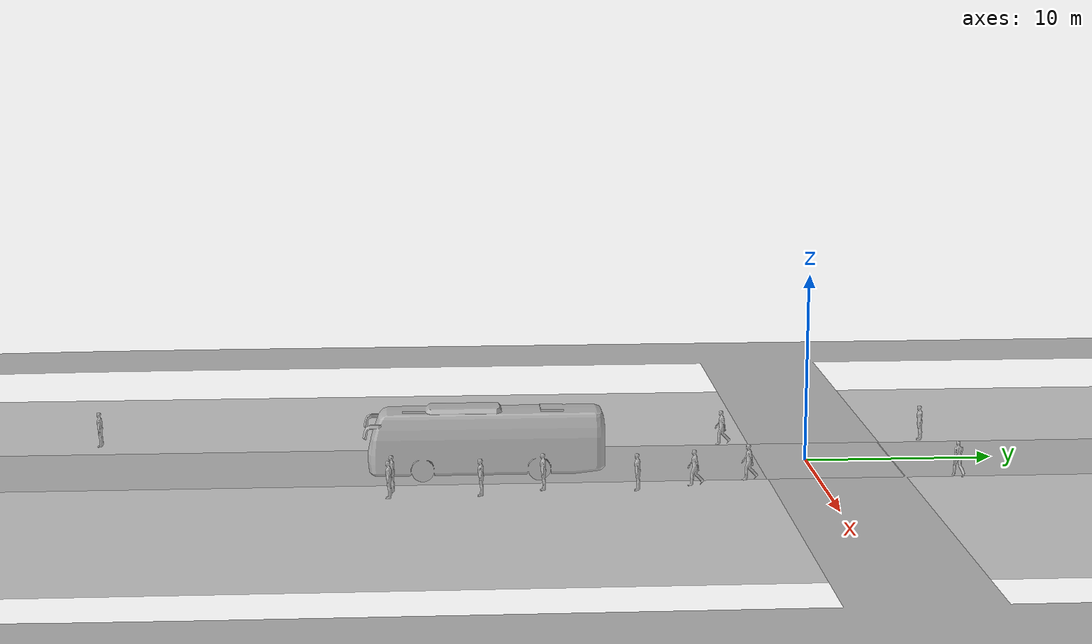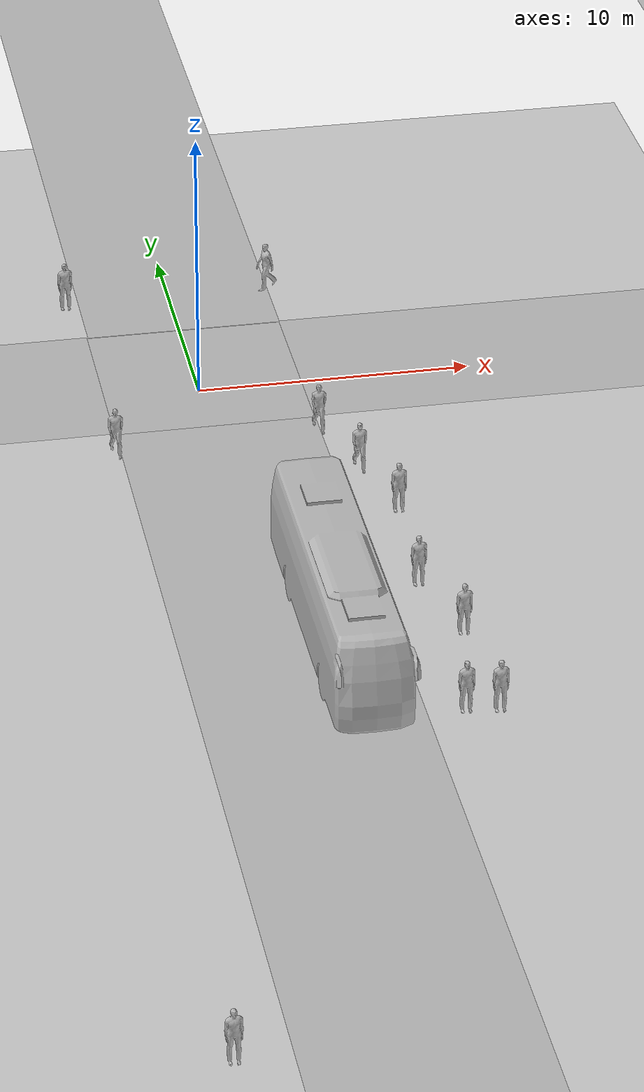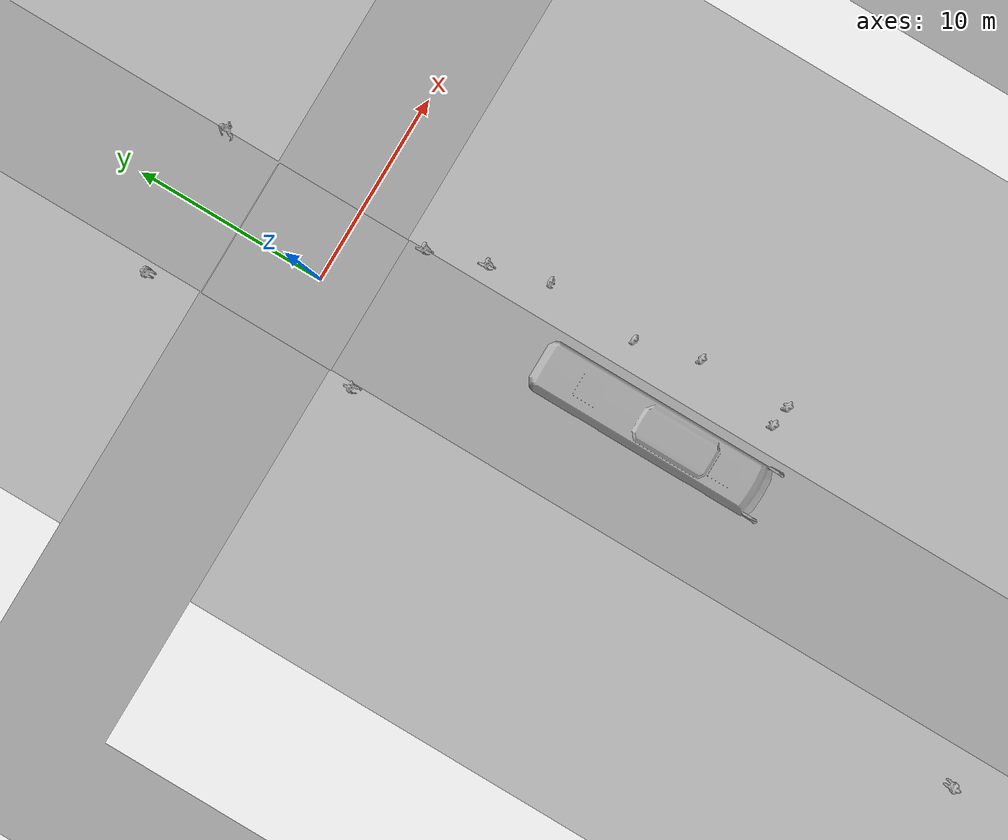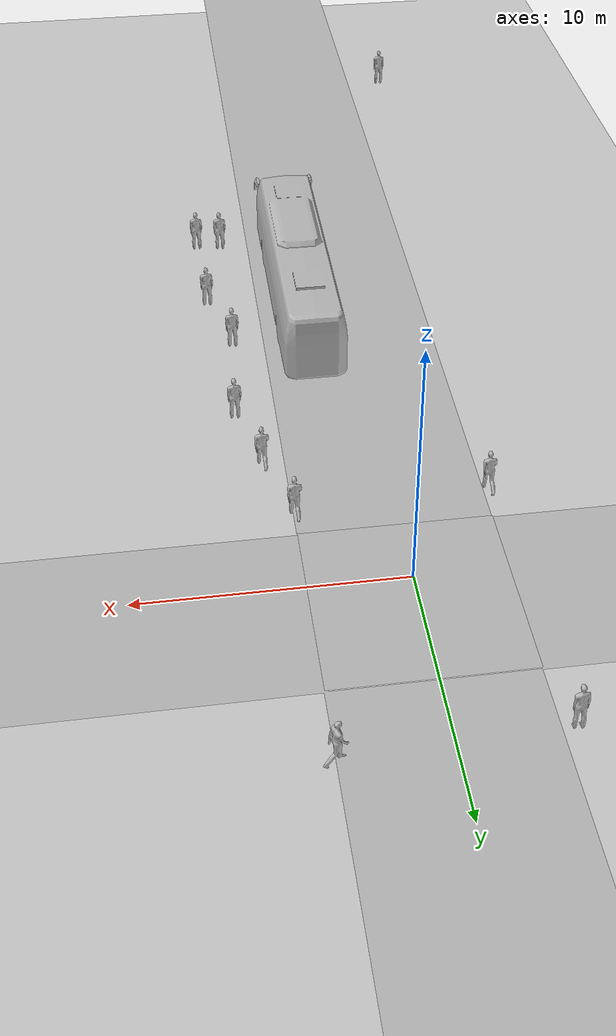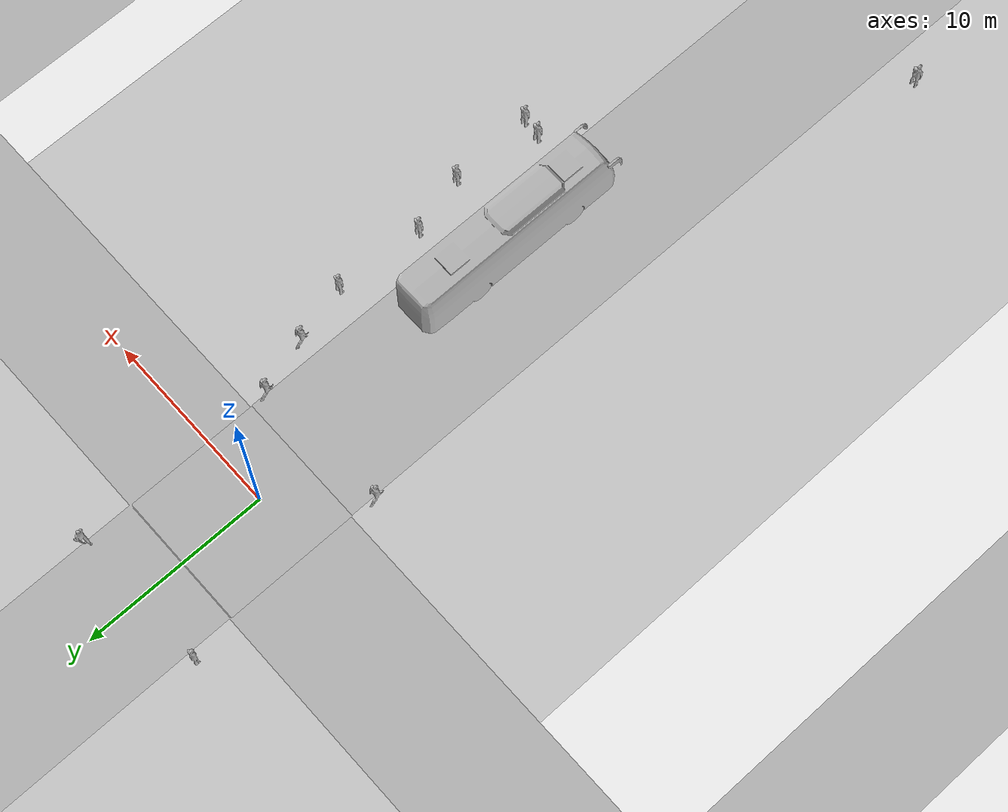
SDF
<sdf version="1.7">
 <world name="default">
  <light name="sun" type="directional">
   <pose>0 0 10 0 -0 0</pose>
   <diffuse>0.8 0.8 0.8 1</diffuse>
   <specular>0.2 0.2 0.2 1</specular>
   <attenuation>
    <range>1000</range>
    <constant>0.9</constant>
    <linear>0.01</linear>
    <quadratic>0.001</quadratic>
   </attenuation>
   <direction>-0.5 0.1 -0.9</direction>
   <spot><inner_angle>0</inner_angle><outer_angle>0</outer_angle><falloff>0</falloff></spot>
  </light>
  <model name="ground_plane">
   <static>1</static>
   <link name="link">
    <collision name="collision">
     <geometry><plane><normal>0 0 1</normal><size>100 100</size></plane></geometry>
     <surface>
      <contact><collide_bitmask>65535</collide_bitmask></contact>
      <friction><ode><mu>100</mu><mu2>50</mu2></ode></friction>
     </surface>
    </collision>
    <visual name="visual">
     <cast_shadows>0</cast_shadows>
     <geometry><plane><normal>0 0 1</normal><size>100 100</size></plane></geometry>
     <material>
      <script><uri>file://media/materials/scripts/gazebo.material</uri><name>Gazebo/Grey</name></script>
     </material>
    </visual>
   </link>
  </model>
  <gravity>0 0 -9.8</gravity>
  <magnetic_field>6e-06 2.3e-05 -4.2e-05</magnetic_field>
  <atmosphere type="adiabatic"/>
  <physics type="ode">
   <max_step_size>0.001</max_step_size>
   <real_time_factor>1</real_time_factor>
   <real_time_update_rate>1000</real_time_update_rate>
  </physics>
  <scene><ambient>0.4 0.4 0.4 1</ambient><background>0.7 0.7 0.7 1</background><shadows>1</shadows></scene>
  <spherical_coordinates>
   <surface_model>EARTH_WGS84</surface_model>
   <latitude_deg>0</latitude_deg>
   <longitude_deg>0</longitude_deg>
   <elevation>0</elevation>
   <heading_deg>0</heading_deg>
  </spherical_coordinates>
  <model name="self_driving_track">
   <link name="link_0">
    <pose>-0.03442 0.020057 0 0 -0 0</pose>
    <visual name="visual">
     <geometry><mesh><uri>model://track/meshes/complete_circuit.dae</uri><scale>1 1 1</scale></mesh></geometry>
     <material>
      <script>
       <uri>model://track/materials/script_road/</uri>
       <uri>model://track/materials/textures</uri>
       <name>road/Diffuse</name>
      </script>
     </material>
    </visual>
    <collision name="collision">
     <geometry><mesh><uri>model://track/meshes/complete_circuit.dae</uri><scale>1 1 1</scale></mesh></geometry>
     <surface>
      <friction>
       <ode><mu>1</mu><mu2>1</mu2><fdir1>0 0 0</fdir1><slip1>0</slip1><slip2>0</slip2></ode>
       <torsional>
        <coefficient>1</coefficient>
        <patch_radius>0</patch_radius>
        <surface_radius>0</surface_radius>
        <use_patch_radius>1</use_patch_radius>
        <ode><slip>0</slip></ode>
       </torsional>
      </friction>
      <bounce><restitution_coefficient>0</restitution_coefficient><threshold>1e+06</threshold></bounce>
      <contact>
       <collide_without_contact>0</collide_without_contact>
       <collide_without_contact_bitmask>1</collide_without_contact_bitmask>
       <collide_bitmask>1</collide_bitmask>
       <ode>
        <soft_cfm>0</soft_cfm>
        <soft_erp>0.2</soft_erp>
        <kp>1e+13</kp>
        <kd>1</kd>
        <max_vel>0.01</max_vel>
        <min_depth>0</min_depth>
       </ode>
       <bullet>
        <split_impulse>1</split_impulse>
        <split_impulse_penetration_threshold>-0.01</split_impulse_penetration_threshold>
        <soft_cfm>0</soft_cfm>
        <soft_erp>0.2</soft_erp>
        <kp>1e+13</kp>
        <kd>1</kd>
       </bullet>
      </contact>
     </surface>
    </collision>
   </link>
   <link name="link_1">
    <pose>0.034415 -0.020057 0 0 -0 0</pose>
    <visual name="visual">
     <geometry><mesh><uri>model://track/meshes/chowk.dae</uri><scale>1 1 1</scale></mesh></geometry>
     <material>
      <script>
       <uri>model://track/materials/script_chowk</uri>
       <uri>model://track/materials/textures</uri>
       <name>chowk/Diffuse</name>
      </script>
     </material>
    </visual>
    <collision name="collision">
     <geometry><mesh><uri>model://track/meshes/chowk.dae</uri><scale>1 1 1</scale></mesh></geometry>
     <surface>
      <friction>
       <ode><mu>1</mu><mu2>1</mu2><fdir1>0 0 0</fdir1><slip1>0</slip1><slip2>0</slip2></ode>
       <torsional>
        <coefficient>1</coefficient>
        <patch_radius>0</patch_radius>
        <surface_radius>0</surface_radius>
        <use_patch_radius>1</use_patch_radius>
        <ode><slip>0</slip></ode>
       </torsional>
      </friction>
      <bounce><restitution_coefficient>0</restitution_coefficient><threshold>1e+06</threshold></bounce>
      <contact>
       <collide_without_contact>0</collide_without_contact>
       <collide_without_contact_bitmask>1</collide_without_contact_bitmask>
       <collide_bitmask>1</collide_bitmask>
       <ode>
        <soft_cfm>0</soft_cfm>
        <soft_erp>0.2</soft_erp>
        <kp>1e+13</kp>
        <kd>1</kd>
        <max_vel>0.01</max_vel>
        <min_depth>0</min_depth>
       </ode>
       <bullet>
        <split_impulse>1</split_impulse>
        <split_impulse_penetration_threshold>-0.01</split_impulse_penetration_threshold>
        <soft_cfm>0</soft_cfm>
        <soft_erp>0.2</soft_erp>
        <kp>1e+13</kp>
        <kd>1</kd>
       </bullet>
      </contact>
     </surface>
    </collision>
   </link>
   <static>1</static>
   <pose>-6 0 0.0025 0 -0 0</pose>
  </model>
  <model name="person_walking">
   <link name="link">
    <inertial>
     <pose>0 0 0.95 0 -0 0</pose>
     <mass>80</mass>
     <inertia><ixx>27.82</ixx><ixy>0</ixy><ixz>0</ixz><iyy>24.88</iyy><iyz>0</iyz><izz>4.57</izz></inertia>
    </inertial>
    <collision name="bottom">
     <pose>0 0 0.01 0 -0 0</pose>
     <geometry><box><size>0.35 0.75 0.02</size></box></geometry>
    </collision>
    <collision name="person">
     <pose>0 0 -0.02 0 -0 0</pose>
     <geometry><mesh><uri>model://person_walking/meshes/walking.dae</uri></mesh></geometry>
    </collision>
    <visual name="visual">
     <pose>0 0 -0.02 0 -0 0</pose>
     <geometry><mesh><uri>model://person_walking/meshes/walking.dae</uri></mesh></geometry>
    </visual>
   </link>
   <pose>3.81742 7.33091 0 1e-06 0 -1.25732</pose>
  </model>
  <model name="person_standing">
   <link name="link">
    <inertial>
     <pose>0 -0.1 0.95 0 -0 0</pose>
     <mass>80</mass>
     <inertia><ixx>24.88</ixx><ixy>0</ixy><ixz>0</ixz><iyy>25.73</iyy><iyz>0</iyz><izz>2.48</izz></inertia>
    </inertial>
    <collision name="bottom">
     <pose>0 -0.1 0.01 0 -0 0</pose>
     <geometry><box><size>0.5 0.35 0.02</size></box></geometry>
    </collision>
    <collision name="person">
     <pose>0 0 0.02 0.04 -0 0</pose>
     <geometry><mesh><uri>model://person_standing/meshes/standing.dae</uri></mesh></geometry>
    </collision>
    <visual name="visual">
     <pose>0 0 0.02 0.04 -0 0</pose>
     <geometry><mesh><uri>model://person_standing/meshes/standing.dae</uri></mesh></geometry>
    </visual>
   </link>
   <pose>6.14294 -22.0444 -1e-06 -1e-06 1e-06 -0.002942</pose>
  </model>
  <model name="person_standing_0">
   <link name="link">
    <inertial>
     <pose>0 -0.1 0.95 0 -0 0</pose>
     <mass>80</mass>
     <inertia><ixx>24.88</ixx><ixy>0</ixy><ixz>0</ixz><iyy>25.73</iyy><iyz>0</iyz><izz>2.48</izz></inertia>
    </inertial>
    <collision name="bottom">
     <pose>0 -0.1 0.01 0 -0 0</pose>
     <geometry><box><size>0.5 0.35 0.02</size></box></geometry>
    </collision>
    <collision name="person">
     <pose>0 0 0.02 0.04 -0 0</pose>
     <geometry><mesh><uri>model://person_standing/meshes/standing.dae</uri></mesh></geometry>
    </collision>
    <visual name="visual">
     <pose>0 0 0.02 0.04 -0 0</pose>
     <geometry><mesh><uri>model://person_standing/meshes/standing.dae</uri></mesh></geometry>
    </visual>
   </link>
   <pose>5.06063 -21.8983 0 -1e-06 1e-06 -0.003756</pose>
  </model>
  <model name="person_standing_1">
   <link name="link">
    <inertial>
     <pose>0 -0.1 0.95 0 -0 0</pose>
     <mass>80</mass>
     <inertia><ixx>24.88</ixx><ixy>0</ixy><ixz>0</ixz><iyy>25.73</iyy><iyz>0</iyz><izz>2.48</izz></inertia>
    </inertial>
    <collision name="bottom">
     <pose>0 -0.1 0.01 0 -0 0</pose>
     <geometry><box><size>0.5 0.35 0.02</size></box></geometry>
    </collision>
    <collision name="person">
     <pose>0 0 0.02 0.04 -0 0</pose>
     <geometry><mesh><uri>model://person_standing/meshes/standing.dae</uri></mesh></geometry>
    </collision>
    <visual name="visual">
     <pose>0 0 0.02 0.04 -0 0</pose>
     <geometry><mesh><uri>model://person_standing/meshes/standing.dae</uri></mesh></geometry>
    </visual>
   </link>
   <pose>5.12972 -14.2387 -0 -0 2e-06 -0.001378</pose>
  </model>
  <model name="person_standing_2">
   <link name="link">
    <inertial>
     <pose>0 -0.1 0.95 0 -0 0</pose>
     <mass>80</mass>
     <inertia><ixx>24.88</ixx><ixy>0</ixy><ixz>0</ixz><iyy>25.73</iyy><iyz>0</iyz><izz>2.48</izz></inertia>
    </inertial>
    <collision name="bottom">
     <pose>0 -0.1 0.01 0 -0 0</pose>
     <geometry><box><size>0.5 0.35 0.02</size></box></geometry>
    </collision>
    <collision name="person">
     <pose>0 0 0.02 0.04 -0 0</pose>
     <geometry><mesh><uri>model://person_standing/meshes/standing.dae</uri></mesh></geometry>
    </collision>
    <visual name="visual">
     <pose>0 0 0.02 0.04 -0 0</pose>
     <geometry><mesh><uri>model://person_standing/meshes/standing.dae</uri></mesh></geometry>
    </visual>
   </link>
   <pose>5.98001 -17.4275 -0 1e-06 1e-06 0.000444</pose>
  </model>
  <model name="person_standing_3">
   <link name="link">
    <inertial>
     <pose>0 -0.1 0.95 0 -0 0</pose>
     <mass>80</mass>
     <inertia><ixx>24.88</ixx><ixy>0</ixy><ixz>0</ixz><iyy>25.73</iyy><iyz>0</iyz><izz>2.48</izz></inertia>
    </inertial>
    <collision name="bottom">
     <pose>0 -0.1 0.01 0 -0 0</pose>
     <geometry><box><size>0.5 0.35 0.02</size></box></geometry>
    </collision>
    <collision name="person">
     <pose>0 0 0.02 0.04 -0 0</pose>
     <geometry><mesh><uri>model://person_standing/meshes/standing.dae</uri></mesh></geometry>
    </collision>
    <visual name="visual">
     <pose>0 0 0.02 0.04 -0 0</pose>
     <geometry><mesh><uri>model://person_standing/meshes/standing.dae</uri></mesh></geometry>
    </visual>
   </link>
   <pose>-5.17028 -37.8575 -0 1e-06 -1e-06 -0.001679</pose>
  </model>
  <model name="person_walking_0">
   <link name="link">
    <inertial>
     <pose>0 0 0.95 0 -0 0</pose>
     <mass>80</mass>
     <inertia><ixx>27.82</ixx><ixy>0</ixy><ixz>0</ixz><iyy>24.88</iyy><iyz>0</iyz><izz>4.57</izz></inertia>
    </inertial>
    <collision name="bottom">
     <pose>0 0 0.01 0 -0 0</pose>
     <geometry><box><size>0.35 0.75 0.02</size></box></geometry>
    </collision>
    <collision name="person">
     <pose>0 0 -0.02 0 -0 0</pose>
     <geometry><mesh><uri>model://person_walking/meshes/walking.dae</uri></mesh></geometry>
    </collision>
    <visual name="visual">
     <pose>0 0 -0.02 0 -0 0</pose>
     <geometry><mesh><uri>model://person_walking/meshes/walking.dae</uri></mesh></geometry>
    </visual>
   </link>
   <pose>4.66039 -6.50604 -1e-06 2e-06 -1e-06 -0.001019</pose>
  </model>
  <model name="person_standing_4">
   <link name="link">
    <inertial>
     <pose>0 -0.1 0.95 0 -0 0</pose>
     <mass>80</mass>
     <inertia><ixx>24.88</ixx><ixy>0</ixy><ixz>0</ixz><iyy>25.73</iyy><iyz>0</iyz><izz>2.48</izz></inertia>
    </inertial>
    <collision name="bottom">
     <pose>0 -0.1 0.01 0 -0 0</pose>
     <geometry><box><size>0.5 0.35 0.02</size></box></geometry>
    </collision>
    <collision name="person">
     <pose>0 0 0.02 0.04 -0 0</pose>
     <geometry><mesh><uri>model://person_standing/meshes/standing.dae</uri></mesh></geometry>
    </collision>
    <visual name="visual">
     <pose>0 0 0.02 0.04 -0 0</pose>
     <geometry><mesh><uri>model://person_standing/meshes/standing.dae</uri></mesh></geometry>
    </visual>
   </link>
   <pose>5.44398 -9.46867 -0 0 -1e-06 -0.003962</pose>
  </model>
  <model name="person_walking_3">
   <link name="link">
    <inertial>
     <pose>0 0 0.95 0 -0 0</pose>
     <mass>80</mass>
     <inertia><ixx>27.82</ixx><ixy>0</ixy><ixz>0</ixz><iyy>24.88</iyy><iyz>0</iyz><izz>4.57</izz></inertia>
    </inertial>
    <collision name="bottom">
     <pose>0 0 0.01 0 -0 0</pose>
     <geometry><box><size>0.35 0.75 0.02</size></box></geometry>
    </collision>
    <collision name="person">
     <pose>0 0 -0.02 0 -0 0</pose>
     <geometry><mesh><uri>model://person_walking/meshes/walking.dae</uri></mesh></geometry>
    </collision>
    <visual name="visual">
     <pose>0 0 -0.02 0 -0 0</pose>
     <geometry><mesh><uri>model://person_walking/meshes/walking.dae</uri></mesh></geometry>
    </visual>
   </link>
   <pose>3.75913 -3.5806 1e-06 -1e-06 1e-06 0.003862</pose>
  </model>
  <model name="bus">
   <static>1</static>
   <link name="link">
    <collision name="collision">
     <geometry><mesh><scale>0.01 0.01 0.01</scale><uri>model://bus/meshes/bus.obj</uri></mesh></geometry>
    </collision>
    <visual name="visual">
     <geometry><mesh><scale>0.01 0.01 0.01</scale><uri>model://bus/meshes/bus.obj</uri></mesh></geometry>
    </visual>
   </link>
   <pose>1.91816 -17.1647 0 0 -0 0</pose>
  </model>
  <model name="person_walking_1">
   <link name="link">
    <inertial>
     <pose>0 0 0.95 0 -0 0</pose>
     <mass>80</mass>
     <inertia><ixx>27.82</ixx><ixy>0</ixy><ixz>0</ixz><iyy>24.88</iyy><iyz>0</iyz><izz>4.57</izz></inertia>
    </inertial>
    <collision name="bottom">
     <pose>0 0 0.01 0 -0 0</pose>
     <geometry><box><size>0.35 0.75 0.02</size></box></geometry>
    </collision>
    <collision name="person">
     <pose>0 0 -0.02 0 -0 0</pose>
     <geometry><mesh><uri>model://person_walking/meshes/walking.dae</uri></mesh></geometry>
    </collision>
    <visual name="visual">
     <pose>0 0 -0.02 0 -0 0</pose>
     <geometry><mesh><uri>model://person_walking/meshes/walking.dae</uri></mesh></geometry>
    </visual>
   </link>
   <pose>-3.6232 -3.99855 0 0 -0 0</pose>
  </model>
  <model name="person_standing_5">
   <link name="link">
    <inertial>
     <pose>0 -0.1 0.95 0 -0 0</pose>
     <mass>80</mass>
     <inertia><ixx>24.88</ixx><ixy>0</ixy><ixz>0</ixz><iyy>25.73</iyy><iyz>0</iyz><izz>2.48</izz></inertia>
    </inertial>
    <collision name="bottom">
     <pose>0 -0.1 0.01 0 -0 0</pose>
     <geometry><box><size>0.5 0.35 0.02</size></box></geometry>
    </collision>
    <collision name="person">
     <pose>0 0 0.02 0.04 -0 0</pose>
     <geometry><mesh><uri>model://person_standing/meshes/standing.dae</uri></mesh></geometry>
    </collision>
    <visual name="visual">
     <pose>0 0 0.02 0.04 -0 0</pose>
     <geometry><mesh><uri>model://person_standing/meshes/standing.dae</uri></mesh></geometry>
    </visual>
   </link>
   <pose>-3.94751 7.10417 0 0 -0 0</pose>
  </model>
 </world>
</sdf>
